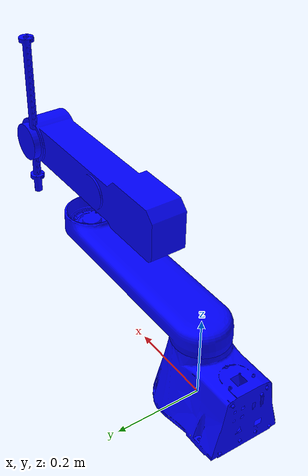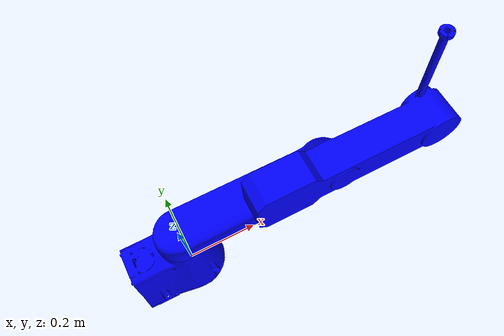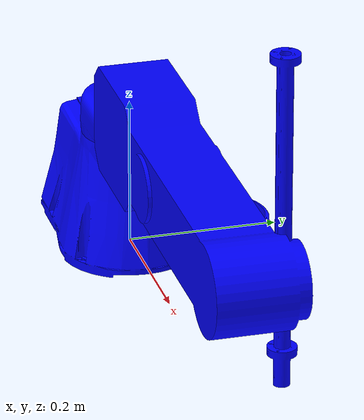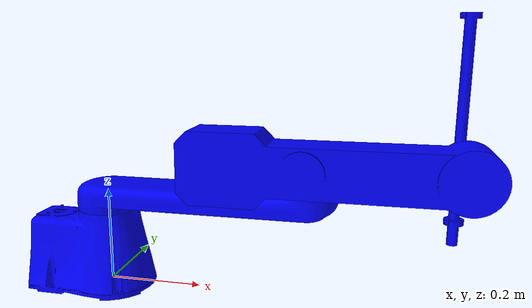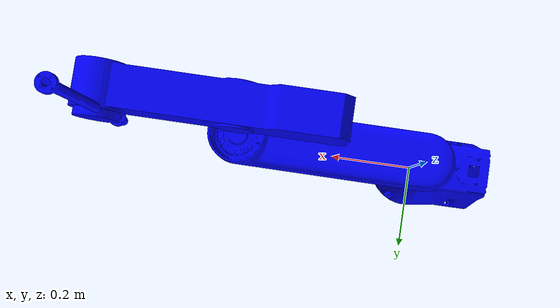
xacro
<?xml version="1.0"?>
<robot xmlns:xacro="http://www.ros.org/wiki/xacro" name="midea_wukong700">

    <xacro:property name="DEG2RAD" value="0.017453292519943295"/>

    <!-- DEFINE PATTERNS -->
    <xacro:macro name="def_link" params="link_name mesh_name">
        <link name="${link_name}">
            <visual>
                <geometry>
                    <mesh filename="./meshes/${mesh_name}"/>
                </geometry>
                <material name="">
                    <color rgba="0 0 1 1"/>
                </material>
                <origin rpy="0 0 0" xyz="0 0 0"/>
            </visual>
            <collision>
                <geometry>
                    <mesh filename="./meshes/${mesh_name}"/>
                </geometry>
                <origin rpy="0 0 0" xyz="0 0 0"/>
            </collision>
        </link>
    </xacro:macro>
    <xacro:macro name="def_empty_link" params="link_name">
        <link name="${link_name}"/>
    </xacro:macro>
    <xacro:macro name="def_revolute_joint" params="joint_name axis effort lower upper velocity origin parent child">
        <joint name="${joint_name}" type="revolute">
            <axis xyz="${axis}"/>
            <limit effort="${effort}" lower="${lower*DEG2RAD}" upper="${upper*DEG2RAD}" velocity="${velocity}"/>
            <origin rpy="0 0 0" xyz="${origin}"/>
            <parent link="${parent}"/>
            <child link="${child}"/>
        </joint>
    </xacro:macro>
    <xacro:macro name="def_prismatic_joint" params="joint_name axis effort lower upper velocity origin parent child">
        <joint name="${joint_name}" type="prismatic">
            <axis xyz="${axis}"/>
            <limit effort="${effort}" lower="${lower}" upper="${upper}" velocity="${velocity}"/>
            <origin rpy="0 0 0" xyz="${origin}"/>
            <parent link="${parent}"/>
            <child link="${child}"/>
        </joint>
    </xacro:macro>
    <xacro:macro name="def_fixed_joint" params="joint_name origin parent child">
        <joint name="${joint_name}" type="fixed">
            <origin rpy="0 0 0" xyz="${origin}"/>
            <parent link="${parent}"/>
            <child link="${child}"/>
        </joint>
    </xacro:macro>

    <!-- DEFINE ROBOT -->
    <xacro:def_link link_name="base_link" mesh_name="base.dae"/>
    <xacro:def_revolute_joint joint_name="joint1" axis="0 0 1" effort="1000.0" lower="-150" upper="150" velocity="1.0"
                              origin="0 0 0.177" parent="base_link" child="link1"/>
    <xacro:def_link link_name="link1" mesh_name="link1.dae"/>
    <xacro:def_revolute_joint joint_name="joint2" axis="0 0 1" effort="1000.0" lower="-150" upper="150" velocity="1.0"
                              origin="0.425 0 0.100" parent="link1" child="link2"/>
    <xacro:def_link link_name="link2" mesh_name="link2.dae"/>
    <xacro:def_prismatic_joint joint_name="joint3" axis="0 0 1" effort="1000.0" lower="-8.5" upper="0.01"
                               velocity="1.0" origin="0.276 0 0.09" parent="link2" child="link_empty_1"/>
    <xacro:def_empty_link link_name="link_empty_1"/>
    <xacro:def_revolute_joint joint_name="joint4" axis="0 0 1" effort="1000.0" lower="-360" upper="360" velocity="1.0"
                              origin="0 0 0" parent="link_empty_1" child="link3"/>
    <xacro:def_link link_name="link3" mesh_name="link3.dae"/>
    <xacro:def_fixed_joint joint_name="joint4-tool0" type="fixed" origin="0 0 -0.232" parent="link3" child="tool0"/>
    <xacro:def_empty_link link_name="tool0"/>

</robot>
